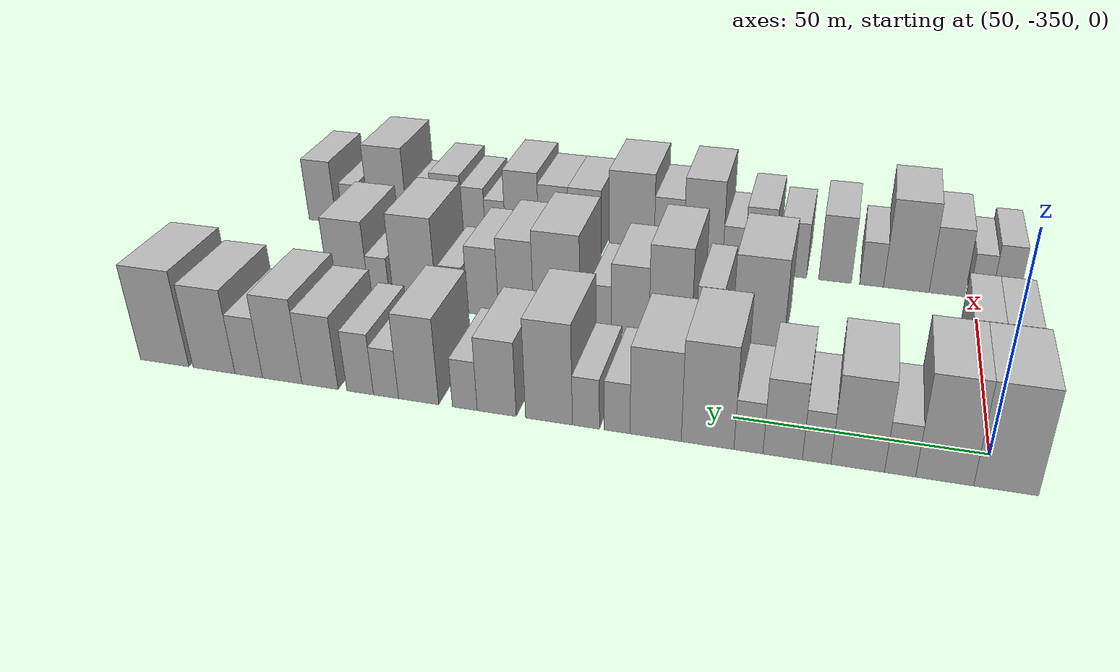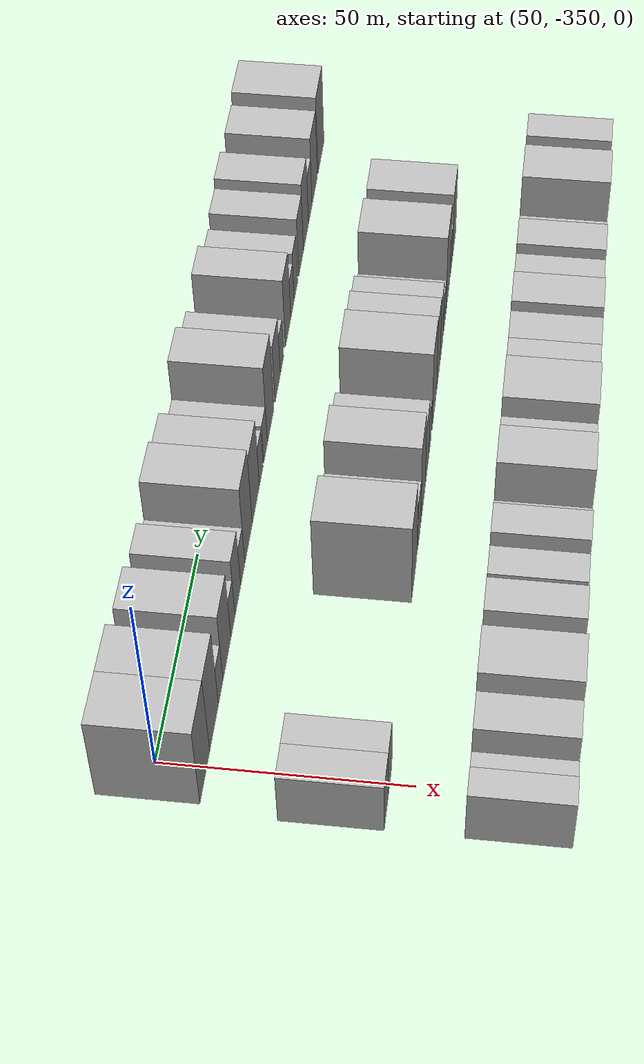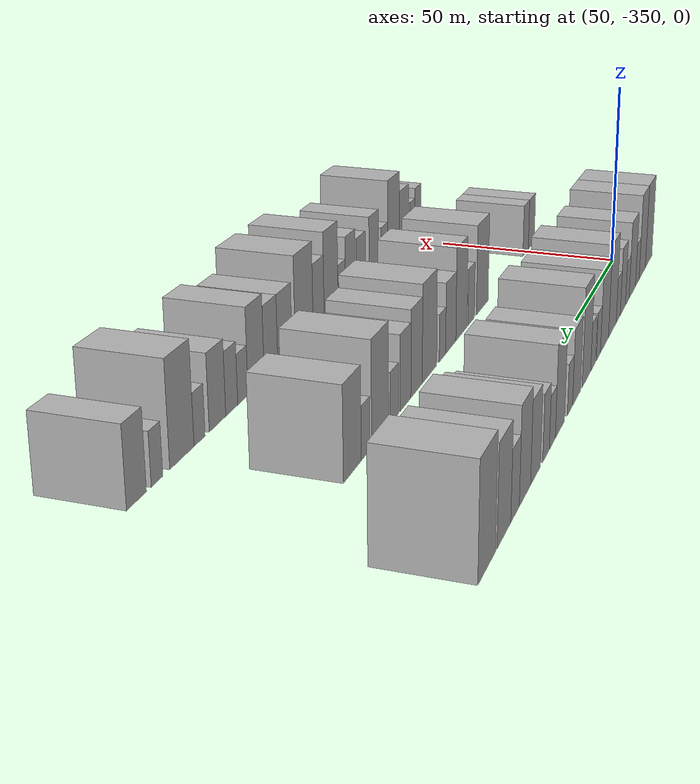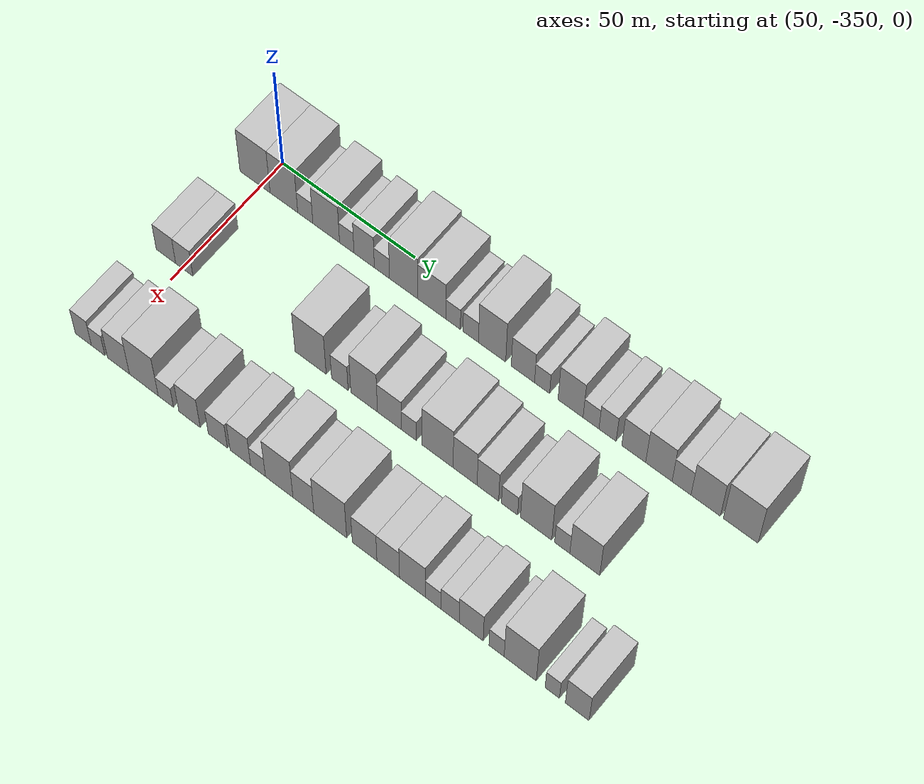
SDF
<sdf version="1.6">
 <world name="default">
  <model name="building_1">
   <static>1</static>
   <pose>50.0000 -352.2117 0 0.000000 0.000000 0.000000</pose>
   <link name="link">
    <pose>0 0 12.00 0 0 0</pose>
    <collision name="collision"><geometry><box><size>20.0000 11.5766 24.0000</size></box></geometry></collision>
    <visual name="visual">
     <cast_shadows>0</cast_shadows>
     <geometry><box><size>20.0000 11.5766 24.0000</size></box></geometry>
     <material>
      <script>
       <uri>model://HANNAS_wall/materials/scripts</uri>
       <uri>model://HANNAS_wall/materials/textures</uri>
       <name>vrc/HANNAS_wall</name>
      </script>
     </material>
    </visual>
   </link>
  </model>
  <model name="building_2">
   <static>1</static>
   <pose>50.0000 -341.1481 0 0.000000 0.000000 0.000000</pose>
   <link name="link">
    <pose>0 0 12.00 0 0 0</pose>
    <collision name="collision"><geometry><box><size>20.0000 10.5507 24.0000</size></box></geometry></collision>
    <visual name="visual">
     <cast_shadows>0</cast_shadows>
     <geometry><box><size>20.0000 10.5507 24.0000</size></box></geometry>
     <material>
      <script>
       <uri>model://HANNAS_wall/materials/scripts</uri>
       <uri>model://HANNAS_wall/materials/textures</uri>
       <name>vrc/HANNAS_wall</name>
      </script>
     </material>
    </visual>
   </link>
  </model>
  <model name="building_3">
   <static>1</static>
   <pose>50.0000 -332.9956 0 0.000000 0.000000 0.000000</pose>
   <link name="link">
    <pose>0 0 6.00 0 0 0</pose>
    <collision name="collision"><geometry><box><size>20.0000 5.7543 12.0000</size></box></geometry></collision>
    <visual name="visual">
     <cast_shadows>0</cast_shadows>
     <geometry><box><size>20.0000 5.7543 12.0000</size></box></geometry>
     <material>
      <script>
       <uri>model://HANNAS_wall/materials/scripts</uri>
       <uri>model://HANNAS_wall/materials/textures</uri>
       <name>vrc/HANNAS_wall</name>
      </script>
     </material>
    </visual>
   </link>
  </model>
  <model name="building_4">
   <static>1</static>
   <pose>50.0000 -325.0731 0 0.000000 0.000000 0.000000</pose>
   <link name="link">
    <pose>0 0 10.50 0 0 0</pose>
    <collision name="collision"><geometry><box><size>20.0000 10.0907 21.0000</size></box></geometry></collision>
    <visual name="visual">
     <cast_shadows>0</cast_shadows>
     <geometry><box><size>20.0000 10.0907 21.0000</size></box></geometry>
     <material>
      <script>
       <uri>model://HANNAS_wall/materials/scripts</uri>
       <uri>model://HANNAS_wall/materials/textures</uri>
       <name>vrc/HANNAS_wall</name>
      </script>
     </material>
    </visual>
   </link>
  </model>
  <model name="building_5">
   <static>1</static>
   <pose>50.0000 -317.3118 0 0.000000 0.000000 0.000000</pose>
   <link name="link">
    <pose>0 0 6.00 0 0 0</pose>
    <collision name="collision"><geometry><box><size>20.0000 5.4318 12.0000</size></box></geometry></collision>
    <visual name="visual">
     <cast_shadows>0</cast_shadows>
     <geometry><box><size>20.0000 5.4318 12.0000</size></box></geometry>
     <material>
      <script>
       <uri>model://HANNAS_wall/materials/scripts</uri>
       <uri>model://HANNAS_wall/materials/textures</uri>
       <name>vrc/HANNAS_wall</name>
      </script>
     </material>
    </visual>
   </link>
  </model>
  <model name="building_6">
   <static>1</static>
   <pose>50.0000 -310.7910 0 0.000000 0.000000 0.000000</pose>
   <link name="link">
    <pose>0 0 9.00 0 0 0</pose>
    <collision name="collision"><geometry><box><size>20.0000 7.6099 18.0000</size></box></geometry></collision>
    <visual name="visual">
     <cast_shadows>0</cast_shadows>
     <geometry><box><size>20.0000 7.6099 18.0000</size></box></geometry>
     <material>
      <script>
       <uri>model://HANNAS_wall/materials/scripts</uri>
       <uri>model://HANNAS_wall/materials/textures</uri>
       <name>vrc/HANNAS_wall</name>
      </script>
     </material>
    </visual>
   </link>
  </model>
  <model name="building_7">
   <static>1</static>
   <pose>50.0000 -304.1499 0 0.000000 0.000000 0.000000</pose>
   <link name="link">
    <pose>0 0 6.00 0 0 0</pose>
    <collision name="collision"><geometry><box><size>20.0000 5.6723 12.0000</size></box></geometry></collision>
    <visual name="visual">
     <cast_shadows>0</cast_shadows>
     <geometry><box><size>20.0000 5.6723 12.0000</size></box></geometry>
     <material>
      <script>
       <uri>model://HANNAS_wall/materials/scripts</uri>
       <uri>model://HANNAS_wall/materials/textures</uri>
       <name>vrc/HANNAS_wall</name>
      </script>
     </material>
    </visual>
   </link>
  </model>
  <model name="building_8">
   <static>1</static>
   <pose>50.0000 -296.0833 0 0.000000 0.000000 0.000000</pose>
   <link name="link">
    <pose>0 0 12.00 0 0 0</pose>
    <collision name="collision"><geometry><box><size>20.0000 10.4610 24.0000</size></box></geometry></collision>
    <visual name="visual">
     <cast_shadows>0</cast_shadows>
     <geometry><box><size>20.0000 10.4610 24.0000</size></box></geometry>
     <material>
      <script>
       <uri>model://HANNAS_wall/materials/scripts</uri>
       <uri>model://HANNAS_wall/materials/textures</uri>
       <name>vrc/HANNAS_wall</name>
      </script>
     </material>
    </visual>
   </link>
  </model>
  <model name="building_9">
   <static>1</static>
   <pose>50.0000 -285.6583 0 0.000000 0.000000 0.000000</pose>
   <link name="link">
    <pose>0 0 10.50 0 0 0</pose>
    <collision name="collision"><geometry><box><size>20.0000 10.3890 21.0000</size></box></geometry></collision>
    <visual name="visual">
     <cast_shadows>0</cast_shadows>
     <geometry><box><size>20.0000 10.3890 21.0000</size></box></geometry>
     <material>
      <script>
       <uri>model://HANNAS_wall/materials/scripts</uri>
       <uri>model://HANNAS_wall/materials/textures</uri>
       <name>vrc/HANNAS_wall</name>
      </script>
     </material>
    </visual>
   </link>
  </model>
  <model name="building_10">
   <static>1</static>
   <pose>50.0000 -277.8284 0 0.000000 0.000000 0.000000</pose>
   <link name="link">
    <pose>0 0 6.00 0 0 0</pose>
    <collision name="collision"><geometry><box><size>20.0000 5.2708 12.0000</size></box></geometry></collision>
    <visual name="visual">
     <cast_shadows>0</cast_shadows>
     <geometry><box><size>20.0000 5.2708 12.0000</size></box></geometry>
     <material>
      <script>
       <uri>model://HANNAS_wall/materials/scripts</uri>
       <uri>model://HANNAS_wall/materials/textures</uri>
       <name>vrc/HANNAS_wall</name>
      </script>
     </material>
    </visual>
   </link>
  </model>
  <model name="building_11">
   <static>1</static>
   <pose>50.0000 -271.3896 0 0.000000 0.000000 0.000000</pose>
   <link name="link">
    <pose>0 0 6.00 0 0 0</pose>
    <collision name="collision"><geometry><box><size>20.0000 5.6068 12.0000</size></box></geometry></collision>
    <visual name="visual">
     <cast_shadows>0</cast_shadows>
     <geometry><box><size>20.0000 5.6068 12.0000</size></box></geometry>
     <material>
      <script>
       <uri>model://HANNAS_wall/materials/scripts</uri>
       <uri>model://HANNAS_wall/materials/textures</uri>
       <name>vrc/HANNAS_wall</name>
      </script>
     </material>
    </visual>
   </link>
  </model>
  <model name="building_12">
   <static>1</static>
   <pose>50.0000 -263.6431 0 0.000000 0.000000 0.000000</pose>
   <link name="link">
    <pose>0 0 12.00 0 0 0</pose>
    <collision name="collision"><geometry><box><size>20.0000 9.8863 24.0000</size></box></geometry></collision>
    <visual name="visual">
     <cast_shadows>0</cast_shadows>
     <geometry><box><size>20.0000 9.8863 24.0000</size></box></geometry>
     <material>
      <script>
       <uri>model://HANNAS_wall/materials/scripts</uri>
       <uri>model://HANNAS_wall/materials/textures</uri>
       <name>vrc/HANNAS_wall</name>
      </script>
     </material>
    </visual>
   </link>
  </model>
  <model name="building_13">
   <static>1</static>
   <pose>50.0000 -252.4964 0 0.000000 0.000000 0.000000</pose>
   <link name="link">
    <pose>0 0 9.00 0 0 0</pose>
    <collision name="collision"><geometry><box><size>20.0000 8.4071 18.0000</size></box></geometry></collision>
    <visual name="visual">
     <cast_shadows>0</cast_shadows>
     <geometry><box><size>20.0000 8.4071 18.0000</size></box></geometry>
     <material>
      <script>
       <uri>model://HANNAS_wall/materials/scripts</uri>
       <uri>model://HANNAS_wall/materials/textures</uri>
       <name>vrc/HANNAS_wall</name>
      </script>
     </material>
    </visual>
   </link>
  </model>
  <model name="building_14">
   <static>1</static>
   <pose>50.0000 -245.5898 0 0.000000 0.000000 0.000000</pose>
   <link name="link">
    <pose>0 0 6.00 0 0 0</pose>
    <collision name="collision"><geometry><box><size>20.0000 5.4060 12.0000</size></box></geometry></collision>
    <visual name="visual">
     <cast_shadows>0</cast_shadows>
     <geometry><box><size>20.0000 5.4060 12.0000</size></box></geometry>
     <material>
      <script>
       <uri>model://HANNAS_wall/materials/scripts</uri>
       <uri>model://HANNAS_wall/materials/textures</uri>
       <name>vrc/HANNAS_wall</name>
      </script>
     </material>
    </visual>
   </link>
  </model>
  <model name="building_15">
   <static>1</static>
   <pose>50.0000 -235.4230 0 0.000000 0.000000 0.000000</pose>
   <link name="link">
    <pose>0 0 10.50 0 0 0</pose>
    <collision name="collision"><geometry><box><size>20.0000 8.9276 21.0000</size></box></geometry></collision>
    <visual name="visual">
     <cast_shadows>0</cast_shadows>
     <geometry><box><size>20.0000 8.9276 21.0000</size></box></geometry>
     <material>
      <script>
       <uri>model://HANNAS_wall/materials/scripts</uri>
       <uri>model://HANNAS_wall/materials/textures</uri>
       <name>vrc/HANNAS_wall</name>
      </script>
     </material>
    </visual>
   </link>
  </model>
  <model name="building_16">
   <static>1</static>
   <pose>50.0000 -228.1357 0 0.000000 0.000000 0.000000</pose>
   <link name="link">
    <pose>0 0 6.00 0 0 0</pose>
    <collision name="collision"><geometry><box><size>20.0000 5.6471 12.0000</size></box></geometry></collision>
    <visual name="visual">
     <cast_shadows>0</cast_shadows>
     <geometry><box><size>20.0000 5.6471 12.0000</size></box></geometry>
     <material>
      <script>
       <uri>model://HANNAS_wall/materials/scripts</uri>
       <uri>model://HANNAS_wall/materials/textures</uri>
       <name>vrc/HANNAS_wall</name>
      </script>
     </material>
    </visual>
   </link>
  </model>
  <model name="building_17">
   <static>1</static>
   <pose>50.0000 -222.2923 0 0.000000 0.000000 0.000000</pose>
   <link name="link">
    <pose>0 0 7.50 0 0 0</pose>
    <collision name="collision"><geometry><box><size>20.0000 6.0396 15.0000</size></box></geometry></collision>
    <visual name="visual">
     <cast_shadows>0</cast_shadows>
     <geometry><box><size>20.0000 6.0396 15.0000</size></box></geometry>
     <material>
      <script>
       <uri>model://HANNAS_wall/materials/scripts</uri>
       <uri>model://HANNAS_wall/materials/textures</uri>
       <name>vrc/HANNAS_wall</name>
      </script>
     </material>
    </visual>
   </link>
  </model>
  <model name="building_18">
   <static>1</static>
   <pose>50.0000 -213.0704 0 0.000000 0.000000 0.000000</pose>
   <link name="link">
    <pose>0 0 9.00 0 0 0</pose>
    <collision name="collision"><geometry><box><size>20.0000 8.4042 18.0000</size></box></geometry></collision>
    <visual name="visual">
     <cast_shadows>0</cast_shadows>
     <geometry><box><size>20.0000 8.4042 18.0000</size></box></geometry>
     <material>
      <script>
       <uri>model://HANNAS_wall/materials/scripts</uri>
       <uri>model://HANNAS_wall/materials/textures</uri>
       <name>vrc/HANNAS_wall</name>
      </script>
     </material>
    </visual>
   </link>
  </model>
  <model name="building_19">
   <static>1</static>
   <pose>50.0000 -204.2598 0 0.000000 0.000000 0.000000</pose>
   <link name="link">
    <pose>0 0 10.50 0 0 0</pose>
    <collision name="collision"><geometry><box><size>20.0000 9.2172 21.0000</size></box></geometry></collision>
    <visual name="visual">
     <cast_shadows>0</cast_shadows>
     <geometry><box><size>20.0000 9.2172 21.0000</size></box></geometry>
     <material>
      <script>
       <uri>model://HANNAS_wall/materials/scripts</uri>
       <uri>model://HANNAS_wall/materials/textures</uri>
       <name>vrc/HANNAS_wall</name>
      </script>
     </material>
    </visual>
   </link>
  </model>
  <model name="building_20">
   <static>1</static>
   <pose>50.0000 -196.3667 0 0.000000 0.000000 0.000000</pose>
   <link name="link">
    <pose>0 0 7.50 0 0 0</pose>
    <collision name="collision"><geometry><box><size>20.0000 6.5690 15.0000</size></box></geometry></collision>
    <visual name="visual">
     <cast_shadows>0</cast_shadows>
     <geometry><box><size>20.0000 6.5690 15.0000</size></box></geometry>
     <material>
      <script>
       <uri>model://HANNAS_wall/materials/scripts</uri>
       <uri>model://HANNAS_wall/materials/textures</uri>
       <name>vrc/HANNAS_wall</name>
      </script>
     </material>
    </visual>
   </link>
  </model>
  <model name="building_21">
   <static>1</static>
   <pose>50.0000 -188.0146 0 0.000000 0.000000 0.000000</pose>
   <link name="link">
    <pose>0 0 10.50 0 0 0</pose>
    <collision name="collision"><geometry><box><size>20.0000 10.1351 21.0000</size></box></geometry></collision>
    <visual name="visual">
     <cast_shadows>0</cast_shadows>
     <geometry><box><size>20.0000 10.1351 21.0000</size></box></geometry>
     <material>
      <script>
       <uri>model://HANNAS_wall/materials/scripts</uri>
       <uri>model://HANNAS_wall/materials/textures</uri>
       <name>vrc/HANNAS_wall</name>
      </script>
     </material>
    </visual>
   </link>
  </model>
  <model name="building_22">
   <static>1</static>
   <pose>50.0000 -175.9941 0 0.000000 0.000000 0.000000</pose>
   <link name="link">
    <pose>0 0 12.00 0 0 0</pose>
    <collision name="collision"><geometry><box><size>20.0000 11.9061 24.0000</size></box></geometry></collision>
    <visual name="visual">
     <cast_shadows>0</cast_shadows>
     <geometry><box><size>20.0000 11.9061 24.0000</size></box></geometry>
     <material>
      <script>
       <uri>model://HANNAS_wall/materials/scripts</uri>
       <uri>model://HANNAS_wall/materials/textures</uri>
       <name>vrc/HANNAS_wall</name>
      </script>
     </material>
    </visual>
   </link>
  </model>
  <model name="building_80">
   <static>1</static>
   <pose>85.0000 -356.2688 0 0.000000 0.000000 0.000000</pose>
   <link name="link">
    <pose>0 0 7.50 0 0 0</pose>
    <collision name="collision"><geometry><box><size>20.0000 7.4623 15.0000</size></box></geometry></collision>
    <visual name="visual">
     <cast_shadows>0</cast_shadows>
     <geometry><box><size>20.0000 7.4623 15.0000</size></box></geometry>
     <material>
      <script>
       <uri>model://HANNAS_wall/materials/scripts</uri>
       <uri>model://HANNAS_wall/materials/textures</uri>
       <name>vrc/HANNAS_wall</name>
      </script>
     </material>
    </visual>
   </link>
  </model>
  <model name="building_81">
   <static>1</static>
   <pose>85.0000 -349.2362 0 0.000000 0.000000 0.000000</pose>
   <link name="link">
    <pose>0 0 7.50 0 0 0</pose>
    <collision name="collision"><geometry><box><size>20.0000 6.6030 15.0000</size></box></geometry></collision>
    <visual name="visual">
     <cast_shadows>0</cast_shadows>
     <geometry><box><size>20.0000 6.6030 15.0000</size></box></geometry>
     <material>
      <script>
       <uri>model://HANNAS_wall/materials/scripts</uri>
       <uri>model://HANNAS_wall/materials/textures</uri>
       <name>vrc/HANNAS_wall</name>
      </script>
     </material>
    </visual>
   </link>
  </model>
  <model name="building_82">
   <static>1</static>
   <pose>85.0000 -301.6698 0 0.000000 0.000000 0.000000</pose>
   <link name="link">
    <pose>0 0 12.00 0 0 0</pose>
    <collision name="collision"><geometry><box><size>20.0000 11.5099 24.0000</size></box></geometry></collision>
    <visual name="visual">
     <cast_shadows>0</cast_shadows>
     <geometry><box><size>20.0000 11.5099 24.0000</size></box></geometry>
     <material>
      <script>
       <uri>model://HANNAS_wall/materials/scripts</uri>
       <uri>model://HANNAS_wall/materials/textures</uri>
       <name>vrc/HANNAS_wall</name>
      </script>
     </material>
    </visual>
   </link>
  </model>
  <model name="building_83">
   <static>1</static>
   <pose>85.0000 -290.8799 0 0.000000 0.000000 0.000000</pose>
   <link name="link">
    <pose>0 0 7.50 0 0 0</pose>
    <collision name="collision"><geometry><box><size>20.0000 6.0698 15.0000</size></box></geometry></collision>
    <visual name="visual">
     <cast_shadows>0</cast_shadows>
     <geometry><box><size>20.0000 6.0698 15.0000</size></box></geometry>
     <material>
      <script>
       <uri>model://HANNAS_wall/materials/scripts</uri>
       <uri>model://HANNAS_wall/materials/textures</uri>
       <name>vrc/HANNAS_wall</name>
      </script>
     </material>
    </visual>
   </link>
  </model>
  <model name="building_84">
   <static>1</static>
   <pose>85.0000 -281.9794 0 0.000000 0.000000 0.000000</pose>
   <link name="link">
    <pose>0 0 12.00 0 0 0</pose>
    <collision name="collision"><geometry><box><size>20.0000 9.7311 24.0000</size></box></geometry></collision>
    <visual name="visual">
     <cast_shadows>0</cast_shadows>
     <geometry><box><size>20.0000 9.7311 24.0000</size></box></geometry>
     <material>
      <script>
       <uri>model://HANNAS_wall/materials/scripts</uri>
       <uri>model://HANNAS_wall/materials/textures</uri>
       <name>vrc/HANNAS_wall</name>
      </script>
     </material>
    </visual>
   </link>
  </model>
  <model name="building_85">
   <static>1</static>
   <pose>85.0000 -272.7311 0 0.000000 0.000000 0.000000</pose>
   <link name="link">
    <pose>0 0 9.00 0 0 0</pose>
    <collision name="collision"><geometry><box><size>20.0000 8.7655 18.0000</size></box></geometry></collision>
    <visual name="visual">
     <cast_shadows>0</cast_shadows>
     <geometry><box><size>20.0000 8.7655 18.0000</size></box></geometry>
     <material>
      <script>
       <uri>model://HANNAS_wall/materials/scripts</uri>
       <uri>model://HANNAS_wall/materials/textures</uri>
       <name>vrc/HANNAS_wall</name>
      </script>
     </material>
    </visual>
   </link>
  </model>
  <model name="building_86">
   <static>1</static>
   <pose>85.0000 -265.6669 0 0.000000 0.000000 0.000000</pose>
   <link name="link">
    <pose>0 0 6.00 0 0 0</pose>
    <collision name="collision"><geometry><box><size>20.0000 5.3628 12.0000</size></box></geometry></collision>
    <visual name="visual">
     <cast_shadows>0</cast_shadows>
     <geometry><box><size>20.0000 5.3628 12.0000</size></box></geometry>
     <material>
      <script>
       <uri>model://HANNAS_wall/materials/scripts</uri>
       <uri>model://HANNAS_wall/materials/textures</uri>
       <name>vrc/HANNAS_wall</name>
      </script>
     </material>
    </visual>
   </link>
  </model>
  <model name="building_87">
   <static>1</static>
   <pose>85.0000 -255.3852 0 0.000000 0.000000 0.000000</pose>
   <link name="link">
    <pose>0 0 12.00 0 0 0</pose>
    <collision name="collision"><geometry><box><size>20.0000 11.2006 24.0000</size></box></geometry></collision>
    <visual name="visual">
     <cast_shadows>0</cast_shadows>
     <geometry><box><size>20.0000 11.2006 24.0000</size></box></geometry>
     <material>
      <script>
       <uri>model://HANNAS_wall/materials/scripts</uri>
       <uri>model://HANNAS_wall/materials/textures</uri>
       <name>vrc/HANNAS_wall</name>
      </script>
     </material>
    </visual>
   </link>
  </model>
  <model name="building_88">
   <static>1</static>
   <pose>85.0000 -245.5088 0 0.000000 0.000000 0.000000</pose>
   <link name="link">
    <pose>0 0 10.50 0 0 0</pose>
    <collision name="collision"><geometry><box><size>20.0000 8.5522 21.0000</size></box></geometry></collision>
    <visual name="visual">
     <cast_shadows>0</cast_shadows>
     <geometry><box><size>20.0000 8.5522 21.0000</size></box></geometry>
     <material>
      <script>
       <uri>model://HANNAS_wall/materials/scripts</uri>
       <uri>model://HANNAS_wall/materials/textures</uri>
       <name>vrc/HANNAS_wall</name>
      </script>
     </material>
    </visual>
   </link>
  </model>
  <model name="building_89">
   <static>1</static>
   <pose>85.0000 -237.4196 0 0.000000 0.000000 0.000000</pose>
   <link name="link">
    <pose>0 0 9.00 0 0 0</pose>
    <collision name="collision"><geometry><box><size>20.0000 7.6261 18.0000</size></box></geometry></collision>
    <visual name="visual">
     <cast_shadows>0</cast_shadows>
     <geometry><box><size>20.0000 7.6261 18.0000</size></box></geometry>
     <material>
      <script>
       <uri>model://HANNAS_wall/materials/scripts</uri>
       <uri>model://HANNAS_wall/materials/textures</uri>
       <name>vrc/HANNAS_wall</name>
      </script>
     </material>
    </visual>
   </link>
  </model>
  <model name="building_90">
   <static>1</static>
   <pose>85.0000 -229.7472 0 0.000000 0.000000 0.000000</pose>
   <link name="link">
    <pose>0 0 6.00 0 0 0</pose>
    <collision name="collision"><geometry><box><size>20.0000 5.7186 12.0000</size></box></geometry></collision>
    <visual name="visual">
     <cast_shadows>0</cast_shadows>
     <geometry><box><size>20.0000 5.7186 12.0000</size></box></geometry>
     <material>
      <script>
       <uri>model://HANNAS_wall/materials/scripts</uri>
       <uri>model://HANNAS_wall/materials/textures</uri>
       <name>vrc/HANNAS_wall</name>
      </script>
     </material>
    </visual>
   </link>
  </model>
  <model name="building_91">
   <static>1</static>
   <pose>85.0000 -220.4059 0 0.000000 0.000000 0.000000</pose>
   <link name="link">
    <pose>0 0 12.00 0 0 0</pose>
    <collision name="collision"><geometry><box><size>20.0000 10.9640 24.0000</size></box></geometry></collision>
    <visual name="visual">
     <cast_shadows>0</cast_shadows>
     <geometry><box><size>20.0000 10.9640 24.0000</size></box></geometry>
     <material>
      <script>
       <uri>model://HANNAS_wall/materials/scripts</uri>
       <uri>model://HANNAS_wall/materials/textures</uri>
       <name>vrc/HANNAS_wall</name>
      </script>
     </material>
    </visual>
   </link>
  </model>
  <model name="building_92">
   <static>1</static>
   <pose>85.0000 -211.2702 0 0.000000 0.000000 0.000000</pose>
   <link name="link">
    <pose>0 0 6.00 0 0 0</pose>
    <collision name="collision"><geometry><box><size>20.0000 5.3072 12.0000</size></box></geometry></collision>
    <visual name="visual">
     <cast_shadows>0</cast_shadows>
     <geometry><box><size>20.0000 5.3072 12.0000</size></box></geometry>
     <material>
      <script>
       <uri>model://HANNAS_wall/materials/scripts</uri>
       <uri>model://HANNAS_wall/materials/textures</uri>
       <name>vrc/HANNAS_wall</name>
      </script>
     </material>
    </visual>
   </link>
  </model>
  <model name="building_93">
   <static>1</static>
   <pose>85.0000 -203.4408 0 0.000000 0.000000 0.000000</pose>
   <link name="link">
    <pose>0 0 10.50 0 0 0</pose>
    <collision name="collision"><geometry><box><size>20.0000 10.3517 21.0000</size></box></geometry></collision>
    <visual name="visual">
     <cast_shadows>0</cast_shadows>
     <geometry><box><size>20.0000 10.3517 21.0000</size></box></geometry>
     <material>
      <script>
       <uri>model://HANNAS_wall/materials/scripts</uri>
       <uri>model://HANNAS_wall/materials/textures</uri>
       <name>vrc/HANNAS_wall</name>
      </script>
     </material>
    </visual>
   </link>
  </model>
  <model name="building_149">
   <static>1</static>
   <pose>120.0000 -356.9196 0 0.000000 0.000000 0.000000</pose>
   <link name="link">
    <pose>0 0 7.50 0 0 0</pose>
    <collision name="collision"><geometry><box><size>20.0000 6.1607 15.0000</size></box></geometry></collision>
    <visual name="visual">
     <cast_shadows>0</cast_shadows>
     <geometry><box><size>20.0000 6.1607 15.0000</size></box></geometry>
     <material>
      <script>
       <uri>model://HANNAS_wall/materials/scripts</uri>
       <uri>model://HANNAS_wall/materials/textures</uri>
       <name>vrc/HANNAS_wall</name>
      </script>
     </material>
    </visual>
   </link>
  </model>
  <model name="building_150">
   <static>1</static>
   <pose>120.0000 -351.2654 0 0.000000 0.000000 0.000000</pose>
   <link name="link">
    <pose>0 0 6.00 0 0 0</pose>
    <collision name="collision"><geometry><box><size>20.0000 5.1478 12.0000</size></box></geometry></collision>
    <visual name="visual">
     <cast_shadows>0</cast_shadows>
     <geometry><box><size>20.0000 5.1478 12.0000</size></box></geometry>
     <material>
      <script>
       <uri>model://HANNAS_wall/materials/scripts</uri>
       <uri>model://HANNAS_wall/materials/textures</uri>
       <name>vrc/HANNAS_wall</name>
      </script>
     </material>
    </visual>
   </link>
  </model>
  <model name="building_151">
   <static>1</static>
   <pose>120.0000 -343.5292 0 0.000000 0.000000 0.000000</pose>
   <link name="link">
    <pose>0 0 9.00 0 0 0</pose>
    <collision name="collision"><geometry><box><size>20.0000 8.3246 18.0000</size></box></geometry></collision>
    <visual name="visual">
     <cast_shadows>0</cast_shadows>
     <geometry><box><size>20.0000 8.3246 18.0000</size></box></geometry>
     <material>
      <script>
       <uri>model://HANNAS_wall/materials/scripts</uri>
       <uri>model://HANNAS_wall/materials/textures</uri>
       <name>vrc/HANNAS_wall</name>
      </script>
     </material>
    </visual>
   </link>
  </model>
  <model name="building_152">
   <static>1</static>
   <pose>120.0000 -333.9451 0 0.000000 0.000000 0.000000</pose>
   <link name="link">
    <pose>0 0 12.00 0 0 0</pose>
    <collision name="collision"><geometry><box><size>20.0000 10.8435 24.0000</size></box></geometry></collision>
    <visual name="visual">
     <cast_shadows>0</cast_shadows>
     <geometry><box><size>20.0000 10.8435 24.0000</size></box></geometry>
     <material>
      <script>
       <uri>model://HANNAS_wall/materials/scripts</uri>
       <uri>model://HANNAS_wall/materials/textures</uri>
       <name>vrc/HANNAS_wall</name>
      </script>
     </material>
    </visual>
   </link>
  </model>
  <model name="building_153">
   <static>1</static>
   <pose>120.0000 -325.6657 0 0.000000 0.000000 0.000000</pose>
   <link name="link">
    <pose>0 0 6.00 0 0 0</pose>
    <collision name="collision"><geometry><box><size>20.0000 5.7154 12.0000</size></box></geometry></collision>
    <visual name="visual">
     <cast_shadows>0</cast_shadows>
     <geometry><box><size>20.0000 5.7154 12.0000</size></box></geometry>
     <material>
      <script>
       <uri>model://HANNAS_wall/materials/scripts</uri>
       <uri>model://HANNAS_wall/materials/textures</uri>
       <name>vrc/HANNAS_wall</name>
      </script>
     </material>
    </visual>
   </link>
  </model>
  <model name="building_154">
   <static>1</static>
   <pose>120.0000 -316.8254 0 0.000000 0.000000 0.000000</pose>
   <link name="link">
    <pose>0 0 9.00 0 0 0</pose>
    <collision name="collision"><geometry><box><size>20.0000 7.9652 18.0000</size></box></geometry></collision>
    <visual name="visual">
     <cast_shadows>0</cast_shadows>
     <geometry><box><size>20.0000 7.9652 18.0000</size></box></geometry>
     <material>
      <script>
       <uri>model://HANNAS_wall/materials/scripts</uri>
       <uri>model://HANNAS_wall/materials/textures</uri>
       <name>vrc/HANNAS_wall</name>
      </script>
     </material>
    </visual>
   </link>
  </model>
  <model name="building_155">
   <static>1</static>
   <pose>120.0000 -306.3064 0 0.000000 0.000000 0.000000</pose>
   <link name="link">
    <pose>0 0 7.50 0 0 0</pose>
    <collision name="collision"><geometry><box><size>20.0000 7.0728 15.0000</size></box></geometry></collision>
    <visual name="visual">
     <cast_shadows>0</cast_shadows>
     <geometry><box><size>20.0000 7.0728 15.0000</size></box></geometry>
     <material>
      <script>
       <uri>model://HANNAS_wall/materials/scripts</uri>
       <uri>model://HANNAS_wall/materials/textures</uri>
       <name>vrc/HANNAS_wall</name>
      </script>
     </material>
    </visual>
   </link>
  </model>
  <model name="building_156">
   <static>1</static>
   <pose>120.0000 -297.9930 0 0.000000 0.000000 0.000000</pose>
   <link name="link">
    <pose>0 0 9.00 0 0 0</pose>
    <collision name="collision"><geometry><box><size>20.0000 7.5539 18.0000</size></box></geometry></collision>
    <visual name="visual">
     <cast_shadows>0</cast_shadows>
     <geometry><box><size>20.0000 7.5539 18.0000</size></box></geometry>
     <material>
      <script>
       <uri>model://HANNAS_wall/materials/scripts</uri>
       <uri>model://HANNAS_wall/materials/textures</uri>
       <name>vrc/HANNAS_wall</name>
      </script>
     </material>
    </visual>
   </link>
  </model>
  <model name="building_157">
   <static>1</static>
   <pose>120.0000 -291.4966 0 0.000000 0.000000 0.000000</pose>
   <link name="link">
    <pose>0 0 6.00 0 0 0</pose>
    <collision name="collision"><geometry><box><size>20.0000 5.4390 12.0000</size></box></geometry></collision>
    <visual name="visual">
     <cast_shadows>0</cast_shadows>
     <geometry><box><size>20.0000 5.4390 12.0000</size></box></geometry>
     <material>
      <script>
       <uri>model://HANNAS_wall/materials/scripts</uri>
       <uri>model://HANNAS_wall/materials/textures</uri>
       <name>vrc/HANNAS_wall</name>
      </script>
     </material>
    </visual>
   </link>
  </model>
  <model name="building_158">
   <static>1</static>
   <pose>120.0000 -283.7623 0 0.000000 0.000000 0.000000</pose>
   <link name="link">
    <pose>0 0 12.00 0 0 0</pose>
    <collision name="collision"><geometry><box><size>20.0000 10.0296 24.0000</size></box></geometry></collision>
    <visual name="visual">
     <cast_shadows>0</cast_shadows>
     <geometry><box><size>20.0000 10.0296 24.0000</size></box></geometry>
     <material>
      <script>
       <uri>model://HANNAS_wall/materials/scripts</uri>
       <uri>model://HANNAS_wall/materials/textures</uri>
       <name>vrc/HANNAS_wall</name>
      </script>
     </material>
    </visual>
   </link>
  </model>
  <model name="building_159">
   <static>1</static>
   <pose>120.0000 -274.9648 0 0.000000 0.000000 0.000000</pose>
   <link name="link">
    <pose>0 0 9.00 0 0 0</pose>
    <collision name="collision"><geometry><box><size>20.0000 7.5653 18.0000</size></box></geometry></collision>
    <visual name="visual">
     <cast_shadows>0</cast_shadows>
     <geometry><box><size>20.0000 7.5653 18.0000</size></box></geometry>
     <material>
      <script>
       <uri>model://HANNAS_wall/materials/scripts</uri>
       <uri>model://HANNAS_wall/materials/textures</uri>
       <name>vrc/HANNAS_wall</name>
      </script>
     </material>
    </visual>
   </link>
  </model>
  <model name="building_160">
   <static>1</static>
   <pose>120.0000 -265.2818 0 0.000000 0.000000 0.000000</pose>
   <link name="link">
    <pose>0 0 12.00 0 0 0</pose>
    <collision name="collision"><geometry><box><size>20.0000 11.8008 24.0000</size></box></geometry></collision>
    <visual name="visual">
     <cast_shadows>0</cast_shadows>
     <geometry><box><size>20.0000 11.8008 24.0000</size></box></geometry>
     <material>
      <script>
       <uri>model://HANNAS_wall/materials/scripts</uri>
       <uri>model://HANNAS_wall/materials/textures</uri>
       <name>vrc/HANNAS_wall</name>
      </script>
     </material>
    </visual>
   </link>
  </model>
  <model name="building_161">
   <static>1</static>
   <pose>120.0000 -252.9927 0 0.000000 0.000000 0.000000</pose>
   <link name="link">
    <pose>0 0 9.00 0 0 0</pose>
    <collision name="collision"><geometry><box><size>20.0000 8.7773 18.0000</size></box></geometry></collision>
    <visual name="visual">
     <cast_shadows>0</cast_shadows>
     <geometry><box><size>20.0000 8.7773 18.0000</size></box></geometry>
     <material>
      <script>
       <uri>model://HANNAS_wall/materials/scripts</uri>
       <uri>model://HANNAS_wall/materials/textures</uri>
       <name>vrc/HANNAS_wall</name>
      </script>
     </material>
    </visual>
   </link>
  </model>
  <model name="building_162">
   <static>1</static>
   <pose>120.0000 -244.5901 0 0.000000 0.000000 0.000000</pose>
   <link name="link">
    <pose>0 0 9.00 0 0 0</pose>
    <collision name="collision"><geometry><box><size>20.0000 8.0280 18.0000</size></box></geometry></collision>
    <visual name="visual">
     <cast_shadows>0</cast_shadows>
     <geometry><box><size>20.0000 8.0280 18.0000</size></box></geometry>
     <material>
      <script>
       <uri>model://HANNAS_wall/materials/scripts</uri>
       <uri>model://HANNAS_wall/materials/textures</uri>
       <name>vrc/HANNAS_wall</name>
      </script>
     </material>
    </visual>
   </link>
  </model>
  <model name="building_163">
   <static>1</static>
   <pose>120.0000 -236.0128 0 0.000000 0.000000 0.000000</pose>
   <link name="link">
    <pose>0 0 10.50 0 0 0</pose>
    <collision name="collision"><geometry><box><size>20.0000 9.1265 21.0000</size></box></geometry></collision>
    <visual name="visual">
     <cast_shadows>0</cast_shadows>
     <geometry><box><size>20.0000 9.1265 21.0000</size></box></geometry>
     <material>
      <script>
       <uri>model://HANNAS_wall/materials/scripts</uri>
       <uri>model://HANNAS_wall/materials/textures</uri>
       <name>vrc/HANNAS_wall</name>
      </script>
     </material>
    </visual>
   </link>
  </model>
  <model name="building_164">
   <static>1</static>
   <pose>120.0000 -228.6745 0 0.000000 0.000000 0.000000</pose>
   <link name="link">
    <pose>0 0 6.00 0 0 0</pose>
    <collision name="collision"><geometry><box><size>20.0000 5.5501 12.0000</size></box></geometry></collision>
    <visual name="visual">
     <cast_shadows>0</cast_shadows>
     <geometry><box><size>20.0000 5.5501 12.0000</size></box></geometry>
     <material>
      <script>
       <uri>model://HANNAS_wall/materials/scripts</uri>
       <uri>model://HANNAS_wall/materials/textures</uri>
       <name>vrc/HANNAS_wall</name>
      </script>
     </material>
    </visual>
   </link>
  </model>
  <model name="building_165">
   <static>1</static>
   <pose>120.0000 -222.7683 0 0.000000 0.000000 0.000000</pose>
   <link name="link">
    <pose>0 0 7.50 0 0 0</pose>
    <collision name="collision"><geometry><box><size>20.0000 6.2625 15.0000</size></box></geometry></collision>
    <visual name="visual">
     <cast_shadows>0</cast_shadows>
     <geometry><box><size>20.0000 6.2625 15.0000</size></box></geometry>
     <material>
      <script>
       <uri>model://HANNAS_wall/materials/scripts</uri>
       <uri>model://HANNAS_wall/materials/textures</uri>
       <name>vrc/HANNAS_wall</name>
      </script>
     </material>
    </visual>
   </link>
  </model>
  <model name="building_166">
   <static>1</static>
   <pose>120.0000 -215.4696 0 0.000000 0.000000 0.000000</pose>
   <link name="link">
    <pose>0 0 9.00 0 0 0</pose>
    <collision name="collision"><geometry><box><size>20.0000 8.3348 18.0000</size></box></geometry></collision>
    <visual name="visual">
     <cast_shadows>0</cast_shadows>
     <geometry><box><size>20.0000 8.3348 18.0000</size></box></geometry>
     <material>
      <script>
       <uri>model://HANNAS_wall/materials/scripts</uri>
       <uri>model://HANNAS_wall/materials/textures</uri>
       <name>vrc/HANNAS_wall</name>
      </script>
     </material>
    </visual>
   </link>
  </model>
  <model name="building_167">
   <static>1</static>
   <pose>120.0000 -206.6689 0 0.000000 0.000000 0.000000</pose>
   <link name="link">
    <pose>0 0 6.00 0 0 0</pose>
    <collision name="collision"><geometry><box><size>20.0000 5.2666 12.0000</size></box></geometry></collision>
    <visual name="visual">
     <cast_shadows>0</cast_shadows>
     <geometry><box><size>20.0000 5.2666 12.0000</size></box></geometry>
     <material>
      <script>
       <uri>model://HANNAS_wall/materials/scripts</uri>
       <uri>model://HANNAS_wall/materials/textures</uri>
       <name>vrc/HANNAS_wall</name>
      </script>
     </material>
    </visual>
   </link>
  </model>
  <model name="building_168">
   <static>1</static>
   <pose>120.0000 -198.5190 0 0.000000 0.000000 0.000000</pose>
   <link name="link">
    <pose>0 0 12.00 0 0 0</pose>
    <collision name="collision"><geometry><box><size>20.0000 11.0333 24.0000</size></box></geometry></collision>
    <visual name="visual">
     <cast_shadows>0</cast_shadows>
     <geometry><box><size>20.0000 11.0333 24.0000</size></box></geometry>
     <material>
      <script>
       <uri>model://HANNAS_wall/materials/scripts</uri>
       <uri>model://HANNAS_wall/materials/textures</uri>
       <name>vrc/HANNAS_wall</name>
      </script>
     </material>
    </visual>
   </link>
  </model>
  <model name="building_169">
   <static>1</static>
   <pose>120.0000 -187.5455 0 0.000000 0.000000 0.000000</pose>
   <link name="link">
    <pose>0 0 6.00 0 0 0</pose>
    <collision name="collision"><geometry><box><size>20.0000 4.9136 12.0000</size></box></geometry></collision>
    <visual name="visual">
     <cast_shadows>0</cast_shadows>
     <geometry><box><size>20.0000 4.9136 12.0000</size></box></geometry>
     <material>
      <script>
       <uri>model://HANNAS_wall/materials/scripts</uri>
       <uri>model://HANNAS_wall/materials/textures</uri>
       <name>vrc/HANNAS_wall</name>
      </script>
     </material>
    </visual>
   </link>
  </model>
  <model name="building_170">
   <static>1</static>
   <pose>120.0000 -179.0698 0 0.000000 0.000000 0.000000</pose>
   <link name="link">
    <pose>0 0 9.00 0 0 0</pose>
    <collision name="collision"><geometry><box><size>20.0000 8.0378 18.0000</size></box></geometry></collision>
    <visual name="visual">
     <cast_shadows>0</cast_shadows>
     <geometry><box><size>20.0000 8.0378 18.0000</size></box></geometry>
     <material>
      <script>
       <uri>model://HANNAS_wall/materials/scripts</uri>
       <uri>model://HANNAS_wall/materials/textures</uri>
       <name>vrc/HANNAS_wall</name>
      </script>
     </material>
    </visual>
   </link>
  </model>
 </world>
</sdf>
